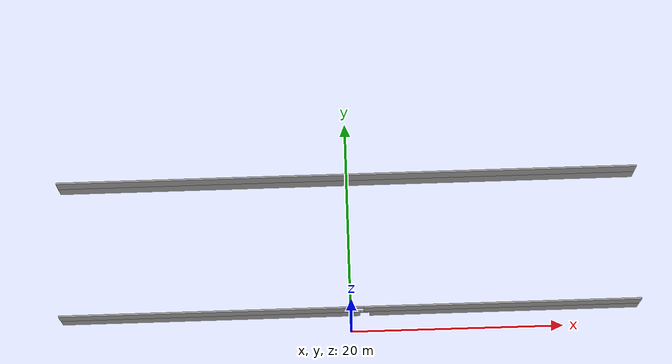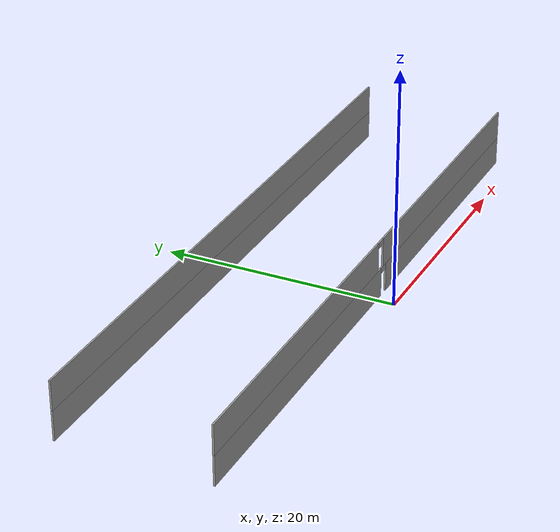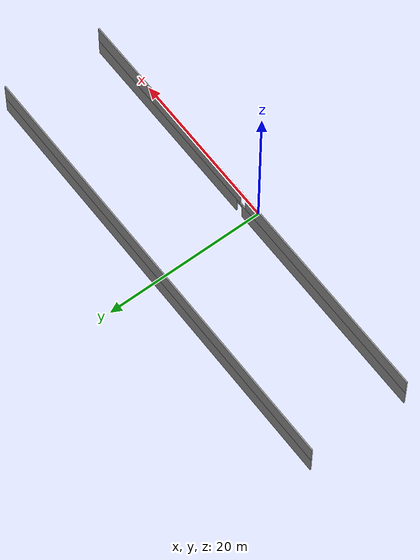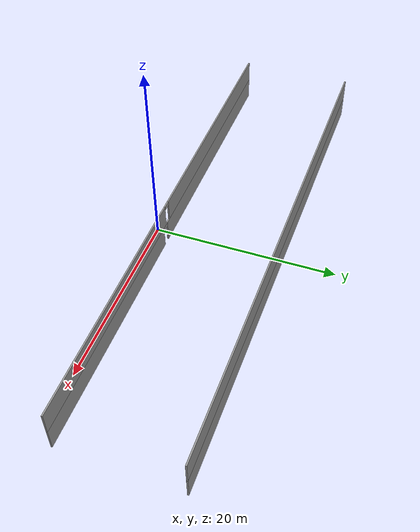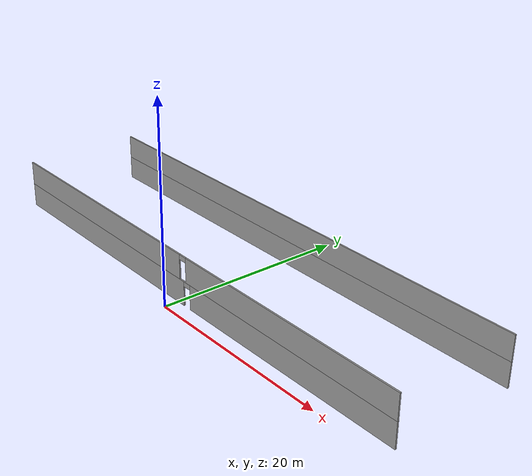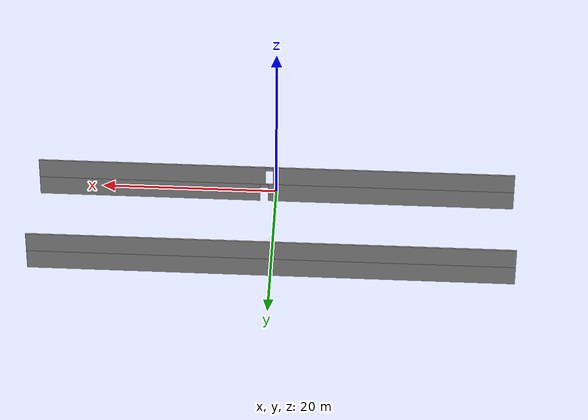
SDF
<sdf version="1.6">
 <model name="Biggest">
  <link name="Wall_118">
   <pose>-0.021436 14.1853 2.5 0 -0 0</pose>
   <visual name="Wall_118_Visual">
    <pose>0 0 1.25 0 -0 0</pose>
    <geometry><box><size>54.5 0.15 2.5</size></box></geometry>
    <material>
     <script><uri>file://media/materials/scripts/gazebo.material</uri><name>Gazebo/Grey</name></script>
     <ambient>1 1 1 1</ambient>
    </material>
    <meta><layer>1</layer></meta>
   </visual>
   <collision name="Wall_118_Collision">
    <pose>0 0 1.25 0 -0 0</pose>
    <geometry><box><size>54.5 0.15 2.5</size></box></geometry>
    <surface>
     <friction>
      <ode><mu>1</mu><mu2>1</mu2><fdir1>0 0 0</fdir1><slip1>0</slip1><slip2>0</slip2></ode>
      <torsional>
       <coefficient>1</coefficient>
       <patch_radius>0</patch_radius>
       <surface_radius>0</surface_radius>
       <use_patch_radius>1</use_patch_radius>
       <ode><slip>0</slip></ode>
      </torsional>
     </friction>
     <bounce><restitution_coefficient>0</restitution_coefficient><threshold>1e+06</threshold></bounce>
     <contact>
      <collide_without_contact>0</collide_without_contact>
      <collide_without_contact_bitmask>1</collide_without_contact_bitmask>
      <collide_bitmask>1</collide_bitmask>
      <ode>
       <soft_cfm>0</soft_cfm>
       <soft_erp>0.2</soft_erp>
       <kp>1e+13</kp>
       <kd>1</kd>
       <max_vel>0.01</max_vel>
       <min_depth>0</min_depth>
      </ode>
      <bullet>
       <split_impulse>1</split_impulse>
       <split_impulse_penetration_threshold>-0.01</split_impulse_penetration_threshold>
       <soft_cfm>0</soft_cfm>
       <soft_erp>0.2</soft_erp>
       <kp>1e+13</kp>
       <kd>1</kd>
      </bullet>
     </contact>
    </surface>
   </collision>
  </link>
  <link name="Wall_122">
   <pose>-0.049451 1.59949 2.5 0 -0 0</pose>
   <visual name="Wall_122_Visual_0">
    <pose>-13.394 0 1.25 0 -0 0</pose>
    <geometry><box><size>27.4621 0.15 2.5</size></box></geometry>
    <material>
     <script><uri>file://media/materials/scripts/gazebo.material</uri><name>Gazebo/Grey</name></script>
     <ambient>1 1 1 1</ambient>
    </material>
    <meta><layer>1</layer></meta>
   </visual>
   <visual name="Wall_122_Visual_1">
    <pose>14.181 0 1.25 0 -0 0</pose>
    <geometry><box><size>25.8879 0.15 2.5</size></box></geometry>
    <material>
     <script><uri>file://media/materials/scripts/gazebo.material</uri><name>Gazebo/Grey</name></script>
     <ambient>1 1 1 1</ambient>
    </material>
    <meta><layer>1</layer></meta>
   </visual>
   <visual name="Wall_122_Visual_2">
    <pose>0.787083 0 2.25 0 -0 0</pose>
    <geometry><box><size>0.9 0.15 0.5</size></box></geometry>
    <material>
     <script><uri>file://media/materials/scripts/gazebo.material</uri><name>Gazebo/Grey</name></script>
     <ambient>1 1 1 1</ambient>
    </material>
    <meta><layer>1</layer></meta>
   </visual>
   <collision name="Wall_122_Collision_0">
    <pose>-13.394 0 1.25 0 -0 0</pose>
    <geometry><box><size>27.4621 0.15 2.5</size></box></geometry>
    <surface>
     <friction>
      <ode><mu>1</mu><mu2>1</mu2><fdir1>0 0 0</fdir1><slip1>0</slip1><slip2>0</slip2></ode>
      <torsional>
       <coefficient>1</coefficient>
       <patch_radius>0</patch_radius>
       <surface_radius>0</surface_radius>
       <use_patch_radius>1</use_patch_radius>
       <ode><slip>0</slip></ode>
      </torsional>
     </friction>
     <bounce><restitution_coefficient>0</restitution_coefficient><threshold>1e+06</threshold></bounce>
     <contact>
      <collide_without_contact>0</collide_without_contact>
      <collide_without_contact_bitmask>1</collide_without_contact_bitmask>
      <collide_bitmask>1</collide_bitmask>
      <ode>
       <soft_cfm>0</soft_cfm>
       <soft_erp>0.2</soft_erp>
       <kp>1e+13</kp>
       <kd>1</kd>
       <max_vel>0.01</max_vel>
       <min_depth>0</min_depth>
      </ode>
      <bullet>
       <split_impulse>1</split_impulse>
       <split_impulse_penetration_threshold>-0.01</split_impulse_penetration_threshold>
       <soft_cfm>0</soft_cfm>
       <soft_erp>0.2</soft_erp>
       <kp>1e+13</kp>
       <kd>1</kd>
      </bullet>
     </contact>
    </surface>
   </collision>
   <collision name="Wall_122_Collision_1">
    <pose>14.181 0 1.25 0 -0 0</pose>
    <geometry><box><size>25.8879 0.15 2.5</size></box></geometry>
    <surface>
     <friction>
      <ode><mu>1</mu><mu2>1</mu2><fdir1>0 0 0</fdir1><slip1>0</slip1><slip2>0</slip2></ode>
      <torsional>
       <coefficient>1</coefficient>
       <patch_radius>0</patch_radius>
       <surface_radius>0</surface_radius>
       <use_patch_radius>1</use_patch_radius>
       <ode><slip>0</slip></ode>
      </torsional>
     </friction>
     <bounce><restitution_coefficient>0</restitution_coefficient><threshold>1e+06</threshold></bounce>
     <contact>
      <collide_without_contact>0</collide_without_contact>
      <collide_without_contact_bitmask>1</collide_without_contact_bitmask>
      <collide_bitmask>1</collide_bitmask>
      <ode>
       <soft_cfm>0</soft_cfm>
       <soft_erp>0.2</soft_erp>
       <kp>1e+13</kp>
       <kd>1</kd>
       <max_vel>0.01</max_vel>
       <min_depth>0</min_depth>
      </ode>
      <bullet>
       <split_impulse>1</split_impulse>
       <split_impulse_penetration_threshold>-0.01</split_impulse_penetration_threshold>
       <soft_cfm>0</soft_cfm>
       <soft_erp>0.2</soft_erp>
       <kp>1e+13</kp>
       <kd>1</kd>
      </bullet>
     </contact>
    </surface>
   </collision>
   <collision name="Wall_122_Collision_2">
    <pose>0.787083 0 2.25 0 -0 0</pose>
    <geometry><box><size>0.9 0.15 0.5</size></box></geometry>
    <surface>
     <friction>
      <ode><mu>1</mu><mu2>1</mu2><fdir1>0 0 0</fdir1><slip1>0</slip1><slip2>0</slip2></ode>
      <torsional>
       <coefficient>1</coefficient>
       <patch_radius>0</patch_radius>
       <surface_radius>0</surface_radius>
       <use_patch_radius>1</use_patch_radius>
       <ode><slip>0</slip></ode>
      </torsional>
     </friction>
     <bounce><restitution_coefficient>0</restitution_coefficient><threshold>1e+06</threshold></bounce>
     <contact>
      <collide_without_contact>0</collide_without_contact>
      <collide_without_contact_bitmask>1</collide_without_contact_bitmask>
      <collide_bitmask>1</collide_bitmask>
      <ode>
       <soft_cfm>0</soft_cfm>
       <soft_erp>0.2</soft_erp>
       <kp>1e+13</kp>
       <kd>1</kd>
       <max_vel>0.01</max_vel>
       <min_depth>0</min_depth>
      </ode>
      <bullet>
       <split_impulse>1</split_impulse>
       <split_impulse_penetration_threshold>-0.01</split_impulse_penetration_threshold>
       <soft_cfm>0</soft_cfm>
       <soft_erp>0.2</soft_erp>
       <kp>1e+13</kp>
       <kd>1</kd>
      </bullet>
     </contact>
    </surface>
   </collision>
  </link>
  <link name="Wall_83">
   <pose>-0.021435 14.1853 0 0 -0 0</pose>
   <visual name="Wall_83_Visual">
    <pose>0 0 1.25 0 -0 0</pose>
    <geometry><box><size>54.5 0.15 2.5</size></box></geometry>
    <material>
     <script><uri>file://media/materials/scripts/gazebo.material</uri><name>Gazebo/Grey</name></script>
     <ambient>1 1 1 1</ambient>
    </material>
    <meta><layer>0</layer></meta>
   </visual>
   <collision name="Wall_83_Collision">
    <pose>0 0 1.25 0 -0 0</pose>
    <geometry><box><size>54.5 0.15 2.5</size></box></geometry>
    <surface>
     <friction>
      <ode><mu>1</mu><mu2>1</mu2><fdir1>0 0 0</fdir1><slip1>0</slip1><slip2>0</slip2></ode>
      <torsional>
       <coefficient>1</coefficient>
       <patch_radius>0</patch_radius>
       <surface_radius>0</surface_radius>
       <use_patch_radius>1</use_patch_radius>
       <ode><slip>0</slip></ode>
      </torsional>
     </friction>
     <bounce><restitution_coefficient>0</restitution_coefficient><threshold>1e+06</threshold></bounce>
     <contact>
      <collide_without_contact>0</collide_without_contact>
      <collide_without_contact_bitmask>1</collide_without_contact_bitmask>
      <collide_bitmask>1</collide_bitmask>
      <ode>
       <soft_cfm>0</soft_cfm>
       <soft_erp>0.2</soft_erp>
       <kp>1e+13</kp>
       <kd>1</kd>
       <max_vel>0.01</max_vel>
       <min_depth>0</min_depth>
      </ode>
      <bullet>
       <split_impulse>1</split_impulse>
       <split_impulse_penetration_threshold>-0.01</split_impulse_penetration_threshold>
       <soft_cfm>0</soft_cfm>
       <soft_erp>0.2</soft_erp>
       <kp>1e+13</kp>
       <kd>1</kd>
      </bullet>
     </contact>
    </surface>
   </collision>
  </link>
  <link name="Wall_88">
   <pose>-0.049451 1.59949 0 0 -0 0</pose>
   <visual name="Wall_88_Visual_0">
    <pose>-13.0953 0 1.25 0 -0 0</pose>
    <geometry><box><size>28.0595 0.15 2.5</size></box></geometry>
    <material>
     <script><uri>file://media/materials/scripts/gazebo.material</uri><name>Gazebo/Grey</name></script>
     <ambient>1 1 1 1</ambient>
    </material>
    <meta><layer>0</layer></meta>
   </visual>
   <visual name="Wall_88_Visual_1">
    <pose>14.4797 0 1.25 0 -0 0</pose>
    <geometry><box><size>25.2905 0.15 2.5</size></box></geometry>
    <material>
     <script><uri>file://media/materials/scripts/gazebo.material</uri><name>Gazebo/Grey</name></script>
     <ambient>1 1 1 1</ambient>
    </material>
    <meta><layer>0</layer></meta>
   </visual>
   <visual name="Wall_88_Visual_2">
    <pose>1.38446 0 2.25 0 -0 0</pose>
    <geometry><box><size>0.9 0.15 0.5</size></box></geometry>
    <material>
     <script><uri>file://media/materials/scripts/gazebo.material</uri><name>Gazebo/Grey</name></script>
     <ambient>1 1 1 1</ambient>
    </material>
    <meta><layer>0</layer></meta>
   </visual>
   <collision name="Wall_88_Collision_0">
    <pose>-13.0953 0 1.25 0 -0 0</pose>
    <geometry><box><size>28.0595 0.15 2.5</size></box></geometry>
    <surface>
     <friction>
      <ode><mu>1</mu><mu2>1</mu2><fdir1>0 0 0</fdir1><slip1>0</slip1><slip2>0</slip2></ode>
      <torsional>
       <coefficient>1</coefficient>
       <patch_radius>0</patch_radius>
       <surface_radius>0</surface_radius>
       <use_patch_radius>1</use_patch_radius>
       <ode><slip>0</slip></ode>
      </torsional>
     </friction>
     <bounce><restitution_coefficient>0</restitution_coefficient><threshold>1e+06</threshold></bounce>
     <contact>
      <collide_without_contact>0</collide_without_contact>
      <collide_without_contact_bitmask>1</collide_without_contact_bitmask>
      <collide_bitmask>1</collide_bitmask>
      <ode>
       <soft_cfm>0</soft_cfm>
       <soft_erp>0.2</soft_erp>
       <kp>1e+13</kp>
       <kd>1</kd>
       <max_vel>0.01</max_vel>
       <min_depth>0</min_depth>
      </ode>
      <bullet>
       <split_impulse>1</split_impulse>
       <split_impulse_penetration_threshold>-0.01</split_impulse_penetration_threshold>
       <soft_cfm>0</soft_cfm>
       <soft_erp>0.2</soft_erp>
       <kp>1e+13</kp>
       <kd>1</kd>
      </bullet>
     </contact>
    </surface>
   </collision>
   <collision name="Wall_88_Collision_1">
    <pose>14.4797 0 1.25 0 -0 0</pose>
    <geometry><box><size>25.2905 0.15 2.5</size></box></geometry>
    <surface>
     <friction>
      <ode><mu>1</mu><mu2>1</mu2><fdir1>0 0 0</fdir1><slip1>0</slip1><slip2>0</slip2></ode>
      <torsional>
       <coefficient>1</coefficient>
       <patch_radius>0</patch_radius>
       <surface_radius>0</surface_radius>
       <use_patch_radius>1</use_patch_radius>
       <ode><slip>0</slip></ode>
      </torsional>
     </friction>
     <bounce><restitution_coefficient>0</restitution_coefficient><threshold>1e+06</threshold></bounce>
     <contact>
      <collide_without_contact>0</collide_without_contact>
      <collide_without_contact_bitmask>1</collide_without_contact_bitmask>
      <collide_bitmask>1</collide_bitmask>
      <ode>
       <soft_cfm>0</soft_cfm>
       <soft_erp>0.2</soft_erp>
       <kp>1e+13</kp>
       <kd>1</kd>
       <max_vel>0.01</max_vel>
       <min_depth>0</min_depth>
      </ode>
      <bullet>
       <split_impulse>1</split_impulse>
       <split_impulse_penetration_threshold>-0.01</split_impulse_penetration_threshold>
       <soft_cfm>0</soft_cfm>
       <soft_erp>0.2</soft_erp>
       <kp>1e+13</kp>
       <kd>1</kd>
      </bullet>
     </contact>
    </surface>
   </collision>
   <collision name="Wall_88_Collision_2">
    <pose>1.38446 0 2.25 0 -0 0</pose>
    <geometry><box><size>0.9 0.15 0.5</size></box></geometry>
    <surface>
     <friction>
      <ode><mu>1</mu><mu2>1</mu2><fdir1>0 0 0</fdir1><slip1>0</slip1><slip2>0</slip2></ode>
      <torsional>
       <coefficient>1</coefficient>
       <patch_radius>0</patch_radius>
       <surface_radius>0</surface_radius>
       <use_patch_radius>1</use_patch_radius>
       <ode><slip>0</slip></ode>
      </torsional>
     </friction>
     <bounce><restitution_coefficient>0</restitution_coefficient><threshold>1e+06</threshold></bounce>
     <contact>
      <collide_without_contact>0</collide_without_contact>
      <collide_without_contact_bitmask>1</collide_without_contact_bitmask>
      <collide_bitmask>1</collide_bitmask>
      <ode>
       <soft_cfm>0</soft_cfm>
       <soft_erp>0.2</soft_erp>
       <kp>1e+13</kp>
       <kd>1</kd>
       <max_vel>0.01</max_vel>
       <min_depth>0</min_depth>
      </ode>
      <bullet>
       <split_impulse>1</split_impulse>
       <split_impulse_penetration_threshold>-0.01</split_impulse_penetration_threshold>
       <soft_cfm>0</soft_cfm>
       <soft_erp>0.2</soft_erp>
       <kp>1e+13</kp>
       <kd>1</kd>
      </bullet>
     </contact>
    </surface>
   </collision>
  </link>
  <static>1</static>
 </model>
</sdf>
